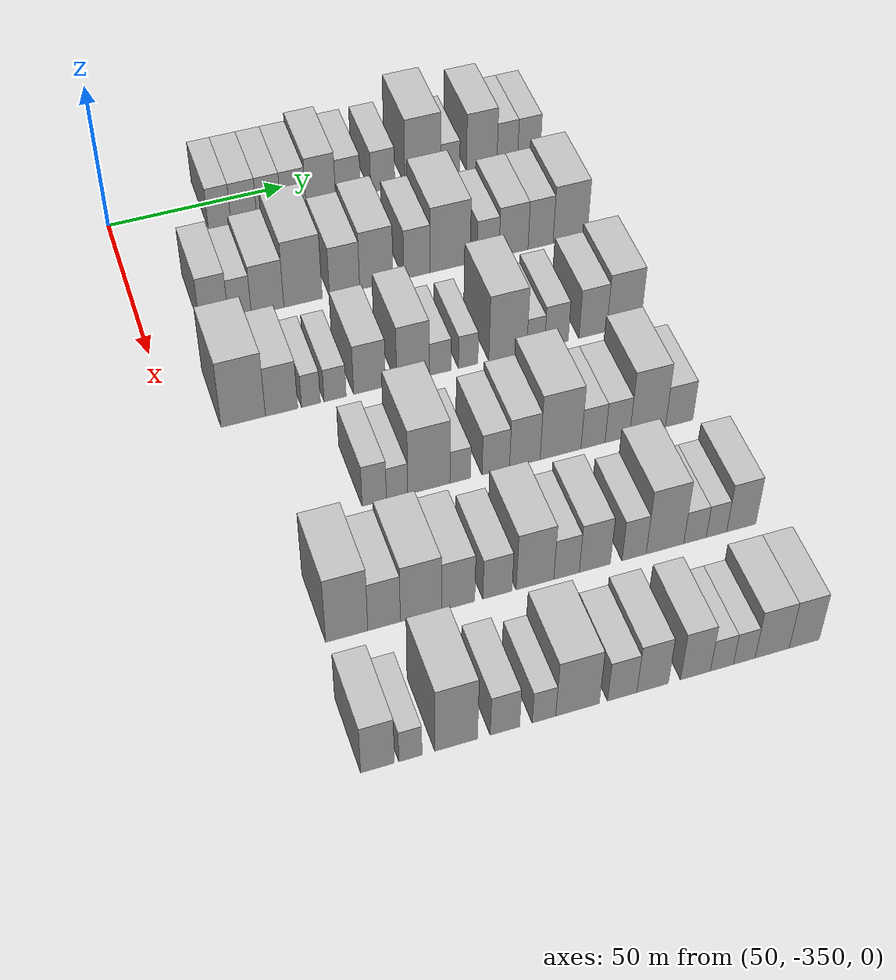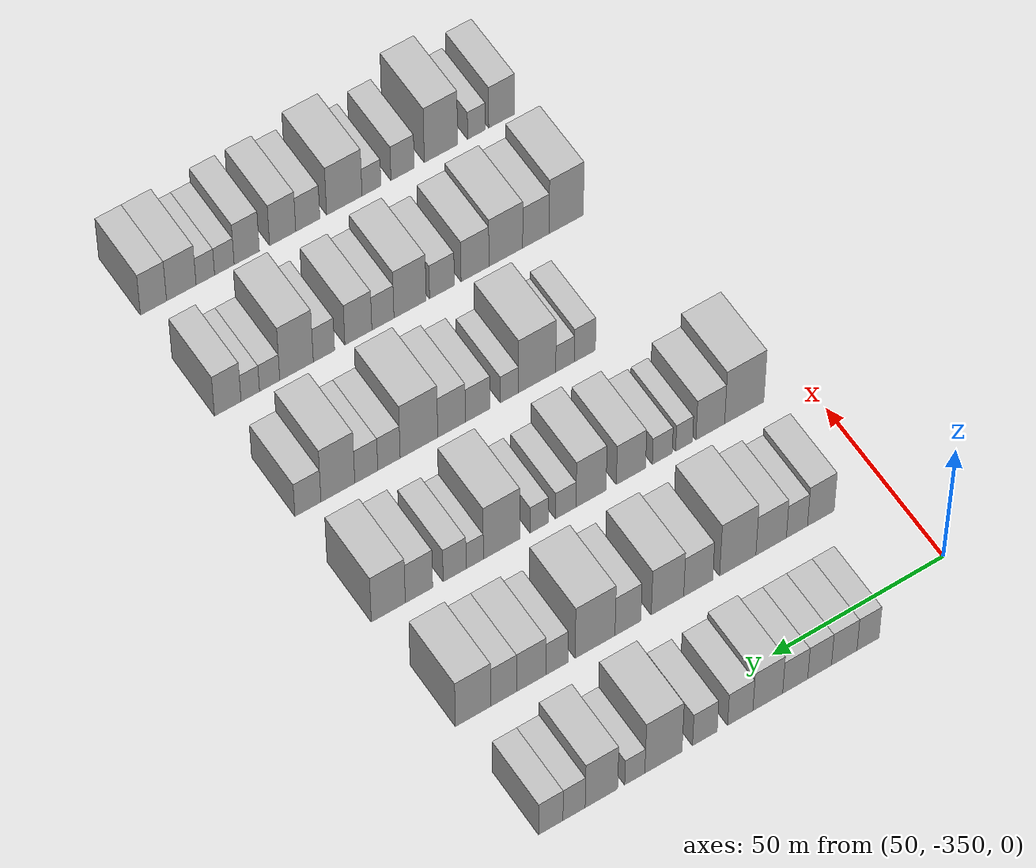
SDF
<sdf version="1.6">
 <world name="default">
  <model name="building_25">
   <static>1</static>
   <pose>50.0000 -320.8477 0 0.000000 0.000000 0.000000</pose>
   <link name="link">
    <pose>0 0 7.50 0 0 0</pose>
    <collision name="collision"><geometry><box><size>20.0000 6.4245 15.0000</size></box></geometry></collision>
    <visual name="visual">
     <cast_shadows>0</cast_shadows>
     <geometry><box><size>20.0000 6.4245 15.0000</size></box></geometry>
     <material>
      <script>
       <uri>model://HANNAS_wall/materials/scripts</uri>
       <uri>model://HANNAS_wall/materials/textures</uri>
       <name>vrc/HANNAS_wall</name>
      </script>
     </material>
    </visual>
   </link>
  </model>
  <model name="building_26">
   <static>1</static>
   <pose>50.0000 -313.9366 0 0.000000 0.000000 0.000000</pose>
   <link name="link">
    <pose>0 0 7.50 0 0 0</pose>
    <collision name="collision"><geometry><box><size>20.0000 7.3976 15.0000</size></box></geometry></collision>
    <visual name="visual">
     <cast_shadows>0</cast_shadows>
     <geometry><box><size>20.0000 7.3976 15.0000</size></box></geometry>
     <material>
      <script>
       <uri>model://HANNAS_wall/materials/scripts</uri>
       <uri>model://HANNAS_wall/materials/textures</uri>
       <name>vrc/HANNAS_wall</name>
      </script>
     </material>
    </visual>
   </link>
  </model>
  <model name="building_27">
   <static>1</static>
   <pose>50.0000 -306.7910 0 0.000000 0.000000 0.000000</pose>
   <link name="link">
    <pose>0 0 7.50 0 0 0</pose>
    <collision name="collision"><geometry><box><size>20.0000 6.8936 15.0000</size></box></geometry></collision>
    <visual name="visual">
     <cast_shadows>0</cast_shadows>
     <geometry><box><size>20.0000 6.8936 15.0000</size></box></geometry>
     <material>
      <script>
       <uri>model://HANNAS_wall/materials/scripts</uri>
       <uri>model://HANNAS_wall/materials/textures</uri>
       <name>vrc/HANNAS_wall</name>
      </script>
     </material>
    </visual>
   </link>
  </model>
  <model name="building_28">
   <static>1</static>
   <pose>50.0000 -299.7176 0 0.000000 0.000000 0.000000</pose>
   <link name="link">
    <pose>0 0 7.50 0 0 0</pose>
    <collision name="collision"><geometry><box><size>20.0000 7.2533 15.0000</size></box></geometry></collision>
    <visual name="visual">
     <cast_shadows>0</cast_shadows>
     <geometry><box><size>20.0000 7.2533 15.0000</size></box></geometry>
     <material>
      <script>
       <uri>model://HANNAS_wall/materials/scripts</uri>
       <uri>model://HANNAS_wall/materials/textures</uri>
       <name>vrc/HANNAS_wall</name>
      </script>
     </material>
    </visual>
   </link>
  </model>
  <model name="building_29">
   <static>1</static>
   <pose>50.0000 -291.8006 0 0.000000 0.000000 0.000000</pose>
   <link name="link">
    <pose>0 0 9.00 0 0 0</pose>
    <collision name="collision"><geometry><box><size>20.0000 8.5807 18.0000</size></box></geometry></collision>
    <visual name="visual">
     <cast_shadows>0</cast_shadows>
     <geometry><box><size>20.0000 8.5807 18.0000</size></box></geometry>
     <material>
      <script>
       <uri>model://HANNAS_wall/materials/scripts</uri>
       <uri>model://HANNAS_wall/materials/textures</uri>
       <name>vrc/HANNAS_wall</name>
      </script>
     </material>
    </visual>
   </link>
  </model>
  <model name="building_30">
   <static>1</static>
   <pose>50.0000 -283.8767 0 0.000000 0.000000 0.000000</pose>
   <link name="link">
    <pose>0 0 7.50 0 0 0</pose>
    <collision name="collision"><geometry><box><size>20.0000 7.2670 15.0000</size></box></geometry></collision>
    <visual name="visual">
     <cast_shadows>0</cast_shadows>
     <geometry><box><size>20.0000 7.2670 15.0000</size></box></geometry>
     <material>
      <script>
       <uri>model://HANNAS_wall/materials/scripts</uri>
       <uri>model://HANNAS_wall/materials/textures</uri>
       <name>vrc/HANNAS_wall</name>
      </script>
     </material>
    </visual>
   </link>
  </model>
  <model name="building_31">
   <static>1</static>
   <pose>50.0000 -273.7150 0 0.000000 0.000000 0.000000</pose>
   <link name="link">
    <pose>0 0 7.50 0 0 0</pose>
    <collision name="collision"><geometry><box><size>20.0000 7.0563 15.0000</size></box></geometry></collision>
    <visual name="visual">
     <cast_shadows>0</cast_shadows>
     <geometry><box><size>20.0000 7.0563 15.0000</size></box></geometry>
     <material>
      <script>
       <uri>model://HANNAS_wall/materials/scripts</uri>
       <uri>model://HANNAS_wall/materials/textures</uri>
       <name>vrc/HANNAS_wall</name>
      </script>
     </material>
    </visual>
   </link>
  </model>
  <model name="building_32">
   <static>1</static>
   <pose>50.0000 -261.8928 0 0.000000 0.000000 0.000000</pose>
   <link name="link">
    <pose>0 0 12.00 0 0 0</pose>
    <collision name="collision"><geometry><box><size>20.0000 10.5881 24.0000</size></box></geometry></collision>
    <visual name="visual">
     <cast_shadows>0</cast_shadows>
     <geometry><box><size>20.0000 10.5881 24.0000</size></box></geometry>
     <material>
      <script>
       <uri>model://HANNAS_wall/materials/scripts</uri>
       <uri>model://HANNAS_wall/materials/textures</uri>
       <name>vrc/HANNAS_wall</name>
      </script>
     </material>
    </visual>
   </link>
  </model>
  <model name="building_33">
   <static>1</static>
   <pose>50.0000 -253.7408 0 0.000000 0.000000 0.000000</pose>
   <link name="link">
    <pose>0 0 6.00 0 0 0</pose>
    <collision name="collision"><geometry><box><size>20.0000 5.7161 12.0000</size></box></geometry></collision>
    <visual name="visual">
     <cast_shadows>0</cast_shadows>
     <geometry><box><size>20.0000 5.7161 12.0000</size></box></geometry>
     <material>
      <script>
       <uri>model://HANNAS_wall/materials/scripts</uri>
       <uri>model://HANNAS_wall/materials/textures</uri>
       <name>vrc/HANNAS_wall</name>
      </script>
     </material>
    </visual>
   </link>
  </model>
  <model name="building_34">
   <static>1</static>
   <pose>50.0000 -244.2932 0 0.000000 0.000000 0.000000</pose>
   <link name="link">
    <pose>0 0 10.50 0 0 0</pose>
    <collision name="collision"><geometry><box><size>20.0000 9.1791 21.0000</size></box></geometry></collision>
    <visual name="visual">
     <cast_shadows>0</cast_shadows>
     <geometry><box><size>20.0000 9.1791 21.0000</size></box></geometry>
     <material>
      <script>
       <uri>model://HANNAS_wall/materials/scripts</uri>
       <uri>model://HANNAS_wall/materials/textures</uri>
       <name>vrc/HANNAS_wall</name>
      </script>
     </material>
    </visual>
   </link>
  </model>
  <model name="building_35">
   <static>1</static>
   <pose>50.0000 -236.5688 0 0.000000 0.000000 0.000000</pose>
   <link name="link">
    <pose>0 0 7.50 0 0 0</pose>
    <collision name="collision"><geometry><box><size>20.0000 6.2698 15.0000</size></box></geometry></collision>
    <visual name="visual">
     <cast_shadows>0</cast_shadows>
     <geometry><box><size>20.0000 6.2698 15.0000</size></box></geometry>
     <material>
      <script>
       <uri>model://HANNAS_wall/materials/scripts</uri>
       <uri>model://HANNAS_wall/materials/textures</uri>
       <name>vrc/HANNAS_wall</name>
      </script>
     </material>
    </visual>
   </link>
  </model>
  <model name="building_36">
   <static>1</static>
   <pose>50.0000 -230.0047 0 0.000000 0.000000 0.000000</pose>
   <link name="link">
    <pose>0 0 7.50 0 0 0</pose>
    <collision name="collision"><geometry><box><size>20.0000 6.8583 15.0000</size></box></geometry></collision>
    <visual name="visual">
     <cast_shadows>0</cast_shadows>
     <geometry><box><size>20.0000 6.8583 15.0000</size></box></geometry>
     <material>
      <script>
       <uri>model://HANNAS_wall/materials/scripts</uri>
       <uri>model://HANNAS_wall/materials/textures</uri>
       <name>vrc/HANNAS_wall</name>
      </script>
     </material>
    </visual>
   </link>
  </model>
  <model name="building_149">
   <static>1</static>
   <pose>85.0000 -331.2037 0 0.000000 0.000000 0.000000</pose>
   <link name="link">
    <pose>0 0 9.00 0 0 0</pose>
    <collision name="collision"><geometry><box><size>20.0000 7.8263 18.0000</size></box></geometry></collision>
    <visual name="visual">
     <cast_shadows>0</cast_shadows>
     <geometry><box><size>20.0000 7.8263 18.0000</size></box></geometry>
     <material>
      <script>
       <uri>model://HANNAS_wall/materials/scripts</uri>
       <uri>model://HANNAS_wall/materials/textures</uri>
       <name>vrc/HANNAS_wall</name>
      </script>
     </material>
    </visual>
   </link>
  </model>
  <model name="building_150">
   <static>1</static>
   <pose>85.0000 -324.1836 0 0.000000 0.000000 0.000000</pose>
   <link name="link">
    <pose>0 0 7.50 0 0 0</pose>
    <collision name="collision"><geometry><box><size>20.0000 6.2140 15.0000</size></box></geometry></collision>
    <visual name="visual">
     <cast_shadows>0</cast_shadows>
     <geometry><box><size>20.0000 6.2140 15.0000</size></box></geometry>
     <material>
      <script>
       <uri>model://HANNAS_wall/materials/scripts</uri>
       <uri>model://HANNAS_wall/materials/textures</uri>
       <name>vrc/HANNAS_wall</name>
      </script>
     </material>
    </visual>
   </link>
  </model>
  <model name="building_151">
   <static>1</static>
   <pose>85.0000 -316.6134 0 0.000000 0.000000 0.000000</pose>
   <link name="link">
    <pose>0 0 9.00 0 0 0</pose>
    <collision name="collision"><geometry><box><size>20.0000 8.9263 18.0000</size></box></geometry></collision>
    <visual name="visual">
     <cast_shadows>0</cast_shadows>
     <geometry><box><size>20.0000 8.9263 18.0000</size></box></geometry>
     <material>
      <script>
       <uri>model://HANNAS_wall/materials/scripts</uri>
       <uri>model://HANNAS_wall/materials/textures</uri>
       <name>vrc/HANNAS_wall</name>
      </script>
     </material>
    </visual>
   </link>
  </model>
  <model name="building_152">
   <static>1</static>
   <pose>85.0000 -306.8565 0 0.000000 0.000000 0.000000</pose>
   <link name="link">
    <pose>0 0 12.00 0 0 0</pose>
    <collision name="collision"><geometry><box><size>20.0000 10.5875 24.0000</size></box></geometry></collision>
    <visual name="visual">
     <cast_shadows>0</cast_shadows>
     <geometry><box><size>20.0000 10.5875 24.0000</size></box></geometry>
     <material>
      <script>
       <uri>model://HANNAS_wall/materials/scripts</uri>
       <uri>model://HANNAS_wall/materials/textures</uri>
       <name>vrc/HANNAS_wall</name>
      </script>
     </material>
    </visual>
   </link>
  </model>
  <model name="building_153">
   <static>1</static>
   <pose>85.0000 -295.3487 0 0.000000 0.000000 0.000000</pose>
   <link name="link">
    <pose>0 0 9.00 0 0 0</pose>
    <collision name="collision"><geometry><box><size>20.0000 8.4281 18.0000</size></box></geometry></collision>
    <visual name="visual">
     <cast_shadows>0</cast_shadows>
     <geometry><box><size>20.0000 8.4281 18.0000</size></box></geometry>
     <material>
      <script>
       <uri>model://HANNAS_wall/materials/scripts</uri>
       <uri>model://HANNAS_wall/materials/textures</uri>
       <name>vrc/HANNAS_wall</name>
      </script>
     </material>
    </visual>
   </link>
  </model>
  <model name="building_154">
   <static>1</static>
   <pose>85.0000 -286.4419 0 0.000000 0.000000 0.000000</pose>
   <link name="link">
    <pose>0 0 10.50 0 0 0</pose>
    <collision name="collision"><geometry><box><size>20.0000 9.3855 21.0000</size></box></geometry></collision>
    <visual name="visual">
     <cast_shadows>0</cast_shadows>
     <geometry><box><size>20.0000 9.3855 21.0000</size></box></geometry>
     <material>
      <script>
       <uri>model://HANNAS_wall/materials/scripts</uri>
       <uri>model://HANNAS_wall/materials/textures</uri>
       <name>vrc/HANNAS_wall</name>
      </script>
     </material>
    </visual>
   </link>
  </model>
  <model name="building_155">
   <static>1</static>
   <pose>85.0000 -275.0157 0 0.000000 0.000000 0.000000</pose>
   <link name="link">
    <pose>0 0 9.00 0 0 0</pose>
    <collision name="collision"><geometry><box><size>20.0000 7.4668 18.0000</size></box></geometry></collision>
    <visual name="visual">
     <cast_shadows>0</cast_shadows>
     <geometry><box><size>20.0000 7.4668 18.0000</size></box></geometry>
     <material>
      <script>
       <uri>model://HANNAS_wall/materials/scripts</uri>
       <uri>model://HANNAS_wall/materials/textures</uri>
       <name>vrc/HANNAS_wall</name>
      </script>
     </material>
    </visual>
   </link>
  </model>
  <model name="building_156">
   <static>1</static>
   <pose>85.0000 -265.5627 0 0.000000 0.000000 0.000000</pose>
   <link name="link">
    <pose>0 0 12.00 0 0 0</pose>
    <collision name="collision"><geometry><box><size>20.0000 11.4392 24.0000</size></box></geometry></collision>
    <visual name="visual">
     <cast_shadows>0</cast_shadows>
     <geometry><box><size>20.0000 11.4392 24.0000</size></box></geometry>
     <material>
      <script>
       <uri>model://HANNAS_wall/materials/scripts</uri>
       <uri>model://HANNAS_wall/materials/textures</uri>
       <name>vrc/HANNAS_wall</name>
      </script>
     </material>
    </visual>
   </link>
  </model>
  <model name="building_157">
   <static>1</static>
   <pose>85.0000 -254.7006 0 0.000000 0.000000 0.000000</pose>
   <link name="link">
    <pose>0 0 7.50 0 0 0</pose>
    <collision name="collision"><geometry><box><size>20.0000 6.2848 15.0000</size></box></geometry></collision>
    <visual name="visual">
     <cast_shadows>0</cast_shadows>
     <geometry><box><size>20.0000 6.2848 15.0000</size></box></geometry>
     <material>
      <script>
       <uri>model://HANNAS_wall/materials/scripts</uri>
       <uri>model://HANNAS_wall/materials/textures</uri>
       <name>vrc/HANNAS_wall</name>
      </script>
     </material>
    </visual>
   </link>
  </model>
  <model name="building_158">
   <static>1</static>
   <pose>85.0000 -247.3422 0 0.000000 0.000000 0.000000</pose>
   <link name="link">
    <pose>0 0 9.00 0 0 0</pose>
    <collision name="collision"><geometry><box><size>20.0000 8.4321 18.0000</size></box></geometry></collision>
    <visual name="visual">
     <cast_shadows>0</cast_shadows>
     <geometry><box><size>20.0000 8.4321 18.0000</size></box></geometry>
     <material>
      <script>
       <uri>model://HANNAS_wall/materials/scripts</uri>
       <uri>model://HANNAS_wall/materials/textures</uri>
       <name>vrc/HANNAS_wall</name>
      </script>
     </material>
    </visual>
   </link>
  </model>
  <model name="building_159">
   <static>1</static>
   <pose>85.0000 -239.4727 0 0.000000 0.000000 0.000000</pose>
   <link name="link">
    <pose>0 0 9.00 0 0 0</pose>
    <collision name="collision"><geometry><box><size>20.0000 7.3069 18.0000</size></box></geometry></collision>
    <visual name="visual">
     <cast_shadows>0</cast_shadows>
     <geometry><box><size>20.0000 7.3069 18.0000</size></box></geometry>
     <material>
      <script>
       <uri>model://HANNAS_wall/materials/scripts</uri>
       <uri>model://HANNAS_wall/materials/textures</uri>
       <name>vrc/HANNAS_wall</name>
      </script>
     </material>
    </visual>
   </link>
  </model>
  <model name="building_160">
   <static>1</static>
   <pose>85.0000 -230.8018 0 0.000000 0.000000 0.000000</pose>
   <link name="link">
    <pose>0 0 10.50 0 0 0</pose>
    <collision name="collision"><geometry><box><size>20.0000 10.0349 21.0000</size></box></geometry></collision>
    <visual name="visual">
     <cast_shadows>0</cast_shadows>
     <geometry><box><size>20.0000 10.0349 21.0000</size></box></geometry>
     <material>
      <script>
       <uri>model://HANNAS_wall/materials/scripts</uri>
       <uri>model://HANNAS_wall/materials/textures</uri>
       <name>vrc/HANNAS_wall</name>
      </script>
     </material>
    </visual>
   </link>
  </model>
  <model name="building_269">
   <static>1</static>
   <pose>120.0000 -332.4717 0 0.000000 0.000000 0.000000</pose>
   <link name="link">
    <pose>0 0 12.00 0 0 0</pose>
    <collision name="collision"><geometry><box><size>20.0000 11.5956 24.0000</size></box></geometry></collision>
    <visual name="visual">
     <cast_shadows>0</cast_shadows>
     <geometry><box><size>20.0000 11.5956 24.0000</size></box></geometry>
     <material>
      <script>
       <uri>model://HANNAS_wall/materials/scripts</uri>
       <uri>model://HANNAS_wall/materials/textures</uri>
       <name>vrc/HANNAS_wall</name>
      </script>
     </material>
    </visual>
   </link>
  </model>
  <model name="building_270">
   <static>1</static>
   <pose>120.0000 -322.4384 0 0.000000 0.000000 0.000000</pose>
   <link name="link">
    <pose>0 0 9.00 0 0 0</pose>
    <collision name="collision"><geometry><box><size>20.0000 8.4710 18.0000</size></box></geometry></collision>
    <visual name="visual">
     <cast_shadows>0</cast_shadows>
     <geometry><box><size>20.0000 8.4710 18.0000</size></box></geometry>
     <material>
      <script>
       <uri>model://HANNAS_wall/materials/scripts</uri>
       <uri>model://HANNAS_wall/materials/textures</uri>
       <name>vrc/HANNAS_wall</name>
      </script>
     </material>
    </visual>
   </link>
  </model>
  <model name="building_271">
   <static>1</static>
   <pose>120.0000 -314.7164 0 0.000000 0.000000 0.000000</pose>
   <link name="link">
    <pose>0 0 6.00 0 0 0</pose>
    <collision name="collision"><geometry><box><size>20.0000 4.9730 12.0000</size></box></geometry></collision>
    <visual name="visual">
     <cast_shadows>0</cast_shadows>
     <geometry><box><size>20.0000 4.9730 12.0000</size></box></geometry>
     <material>
      <script>
       <uri>model://HANNAS_wall/materials/scripts</uri>
       <uri>model://HANNAS_wall/materials/textures</uri>
       <name>vrc/HANNAS_wall</name>
      </script>
     </material>
    </visual>
   </link>
  </model>
  <model name="building_272">
   <static>1</static>
   <pose>120.0000 -308.3107 0 0.000000 0.000000 0.000000</pose>
   <link name="link">
    <pose>0 0 6.00 0 0 0</pose>
    <collision name="collision"><geometry><box><size>20.0000 5.8384 12.0000</size></box></geometry></collision>
    <visual name="visual">
     <cast_shadows>0</cast_shadows>
     <geometry><box><size>20.0000 5.8384 12.0000</size></box></geometry>
     <material>
      <script>
       <uri>model://HANNAS_wall/materials/scripts</uri>
       <uri>model://HANNAS_wall/materials/textures</uri>
       <name>vrc/HANNAS_wall</name>
      </script>
     </material>
    </visual>
   </link>
  </model>
  <model name="building_273">
   <static>1</static>
   <pose>120.0000 -299.1204 0 0.000000 0.000000 0.000000</pose>
   <link name="link">
    <pose>0 0 9.00 0 0 0</pose>
    <collision name="collision"><geometry><box><size>20.0000 8.5421 18.0000</size></box></geometry></collision>
    <visual name="visual">
     <cast_shadows>0</cast_shadows>
     <geometry><box><size>20.0000 8.5421 18.0000</size></box></geometry>
     <material>
      <script>
       <uri>model://HANNAS_wall/materials/scripts</uri>
       <uri>model://HANNAS_wall/materials/textures</uri>
       <name>vrc/HANNAS_wall</name>
      </script>
     </material>
    </visual>
   </link>
  </model>
  <model name="building_274">
   <static>1</static>
   <pose>120.0000 -287.4731 0 0.000000 0.000000 0.000000</pose>
   <link name="link">
    <pose>0 0 10.50 0 0 0</pose>
    <collision name="collision"><geometry><box><size>20.0000 8.7524 21.0000</size></box></geometry></collision>
    <visual name="visual">
     <cast_shadows>0</cast_shadows>
     <geometry><box><size>20.0000 8.7524 21.0000</size></box></geometry>
     <material>
      <script>
       <uri>model://HANNAS_wall/materials/scripts</uri>
       <uri>model://HANNAS_wall/materials/textures</uri>
       <name>vrc/HANNAS_wall</name>
      </script>
     </material>
    </visual>
   </link>
  </model>
  <model name="building_275">
   <static>1</static>
   <pose>120.0000 -280.1041 0 0.000000 0.000000 0.000000</pose>
   <link name="link">
    <pose>0 0 6.00 0 0 0</pose>
    <collision name="collision"><geometry><box><size>20.0000 5.9857 12.0000</size></box></geometry></collision>
    <visual name="visual">
     <cast_shadows>0</cast_shadows>
     <geometry><box><size>20.0000 5.9857 12.0000</size></box></geometry>
     <material>
      <script>
       <uri>model://HANNAS_wall/materials/scripts</uri>
       <uri>model://HANNAS_wall/materials/textures</uri>
       <name>vrc/HANNAS_wall</name>
      </script>
     </material>
    </visual>
   </link>
  </model>
  <model name="building_276">
   <static>1</static>
   <pose>120.0000 -272.4570 0 0.000000 0.000000 0.000000</pose>
   <link name="link">
    <pose>0 0 6.00 0 0 0</pose>
    <collision name="collision"><geometry><box><size>20.0000 5.3084 12.0000</size></box></geometry></collision>
    <visual name="visual">
     <cast_shadows>0</cast_shadows>
     <geometry><box><size>20.0000 5.3084 12.0000</size></box></geometry>
     <material>
      <script>
       <uri>model://HANNAS_wall/materials/scripts</uri>
       <uri>model://HANNAS_wall/materials/textures</uri>
       <name>vrc/HANNAS_wall</name>
      </script>
     </material>
    </visual>
   </link>
  </model>
  <model name="building_277">
   <static>1</static>
   <pose>120.0000 -261.5640 0 0.000000 0.000000 0.000000</pose>
   <link name="link">
    <pose>0 0 12.00 0 0 0</pose>
    <collision name="collision"><geometry><box><size>20.0000 10.4777 24.0000</size></box></geometry></collision>
    <visual name="visual">
     <cast_shadows>0</cast_shadows>
     <geometry><box><size>20.0000 10.4777 24.0000</size></box></geometry>
     <material>
      <script>
       <uri>model://HANNAS_wall/materials/scripts</uri>
       <uri>model://HANNAS_wall/materials/textures</uri>
       <name>vrc/HANNAS_wall</name>
      </script>
     </material>
    </visual>
   </link>
  </model>
  <model name="building_278">
   <static>1</static>
   <pose>120.0000 -253.8477 0 0.000000 0.000000 0.000000</pose>
   <link name="link">
    <pose>0 0 6.00 0 0 0</pose>
    <collision name="collision"><geometry><box><size>20.0000 4.9549 12.0000</size></box></geometry></collision>
    <visual name="visual">
     <cast_shadows>0</cast_shadows>
     <geometry><box><size>20.0000 4.9549 12.0000</size></box></geometry>
     <material>
      <script>
       <uri>model://HANNAS_wall/materials/scripts</uri>
       <uri>model://HANNAS_wall/materials/textures</uri>
       <name>vrc/HANNAS_wall</name>
      </script>
     </material>
    </visual>
   </link>
  </model>
  <model name="building_279">
   <static>1</static>
   <pose>120.0000 -248.0724 0 0.000000 0.000000 0.000000</pose>
   <link name="link">
    <pose>0 0 7.50 0 0 0</pose>
    <collision name="collision"><geometry><box><size>20.0000 6.5958 15.0000</size></box></geometry></collision>
    <visual name="visual">
     <cast_shadows>0</cast_shadows>
     <geometry><box><size>20.0000 6.5958 15.0000</size></box></geometry>
     <material>
      <script>
       <uri>model://HANNAS_wall/materials/scripts</uri>
       <uri>model://HANNAS_wall/materials/textures</uri>
       <name>vrc/HANNAS_wall</name>
      </script>
     </material>
    </visual>
   </link>
  </model>
  <model name="building_280">
   <static>1</static>
   <pose>120.0000 -237.8696 0 0.000000 0.000000 0.000000</pose>
   <link name="link">
    <pose>0 0 9.00 0 0 0</pose>
    <collision name="collision"><geometry><box><size>20.0000 7.8098 18.0000</size></box></geometry></collision>
    <visual name="visual">
     <cast_shadows>0</cast_shadows>
     <geometry><box><size>20.0000 7.8098 18.0000</size></box></geometry>
     <material>
      <script>
       <uri>model://HANNAS_wall/materials/scripts</uri>
       <uri>model://HANNAS_wall/materials/textures</uri>
       <name>vrc/HANNAS_wall</name>
      </script>
     </material>
    </visual>
   </link>
  </model>
  <model name="building_281">
   <static>1</static>
   <pose>120.0000 -229.1177 0 0.000000 0.000000 0.000000</pose>
   <link name="link">
    <pose>0 0 10.50 0 0 0</pose>
    <collision name="collision"><geometry><box><size>20.0000 9.6940 21.0000</size></box></geometry></collision>
    <visual name="visual">
     <cast_shadows>0</cast_shadows>
     <geometry><box><size>20.0000 9.6940 21.0000</size></box></geometry>
     <material>
      <script>
       <uri>model://HANNAS_wall/materials/scripts</uri>
       <uri>model://HANNAS_wall/materials/textures</uri>
       <name>vrc/HANNAS_wall</name>
      </script>
     </material>
    </visual>
   </link>
  </model>
  <model name="building_399">
   <static>1</static>
   <pose>155.0000 -308.7125 0 0.000000 0.000000 0.000000</pose>
   <link name="link">
    <pose>0 0 7.50 0 0 0</pose>
    <collision name="collision"><geometry><box><size>20.0000 6.1995 15.0000</size></box></geometry></collision>
    <visual name="visual">
     <cast_shadows>0</cast_shadows>
     <geometry><box><size>20.0000 6.1995 15.0000</size></box></geometry>
     <material>
      <script>
       <uri>model://HANNAS_wall/materials/scripts</uri>
       <uri>model://HANNAS_wall/materials/textures</uri>
       <name>vrc/HANNAS_wall</name>
      </script>
     </material>
    </visual>
   </link>
  </model>
  <model name="building_400">
   <static>1</static>
   <pose>155.0000 -302.8727 0 0.000000 0.000000 0.000000</pose>
   <link name="link">
    <pose>0 0 6.00 0 0 0</pose>
    <collision name="collision"><geometry><box><size>20.0000 5.4802 12.0000</size></box></geometry></collision>
    <visual name="visual">
     <cast_shadows>0</cast_shadows>
     <geometry><box><size>20.0000 5.4802 12.0000</size></box></geometry>
     <material>
      <script>
       <uri>model://HANNAS_wall/materials/scripts</uri>
       <uri>model://HANNAS_wall/materials/textures</uri>
       <name>vrc/HANNAS_wall</name>
      </script>
     </material>
    </visual>
   </link>
  </model>
  <model name="building_401">
   <static>1</static>
   <pose>155.0000 -294.6888 0 0.000000 0.000000 0.000000</pose>
   <link name="link">
    <pose>0 0 12.00 0 0 0</pose>
    <collision name="collision"><geometry><box><size>20.0000 10.8877 24.0000</size></box></geometry></collision>
    <visual name="visual">
     <cast_shadows>0</cast_shadows>
     <geometry><box><size>20.0000 10.8877 24.0000</size></box></geometry>
     <material>
      <script>
       <uri>model://HANNAS_wall/materials/scripts</uri>
       <uri>model://HANNAS_wall/materials/textures</uri>
       <name>vrc/HANNAS_wall</name>
      </script>
     </material>
    </visual>
   </link>
  </model>
  <model name="building_402">
   <static>1</static>
   <pose>155.0000 -286.5653 0 0.000000 0.000000 0.000000</pose>
   <link name="link">
    <pose>0 0 6.00 0 0 0</pose>
    <collision name="collision"><geometry><box><size>20.0000 5.3592 12.0000</size></box></geometry></collision>
    <visual name="visual">
     <cast_shadows>0</cast_shadows>
     <geometry><box><size>20.0000 5.3592 12.0000</size></box></geometry>
     <material>
      <script>
       <uri>model://HANNAS_wall/materials/scripts</uri>
       <uri>model://HANNAS_wall/materials/textures</uri>
       <name>vrc/HANNAS_wall</name>
      </script>
     </material>
    </visual>
   </link>
  </model>
  <model name="building_403">
   <static>1</static>
   <pose>155.0000 -277.2826 0 0.000000 0.000000 0.000000</pose>
   <link name="link">
    <pose>0 0 7.50 0 0 0</pose>
    <collision name="collision"><geometry><box><size>20.0000 7.2064 15.0000</size></box></geometry></collision>
    <visual name="visual">
     <cast_shadows>0</cast_shadows>
     <geometry><box><size>20.0000 7.2064 15.0000</size></box></geometry>
     <material>
      <script>
       <uri>model://HANNAS_wall/materials/scripts</uri>
       <uri>model://HANNAS_wall/materials/textures</uri>
       <name>vrc/HANNAS_wall</name>
      </script>
     </material>
    </visual>
   </link>
  </model>
  <model name="building_404">
   <static>1</static>
   <pose>155.0000 -269.6593 0 0.000000 0.000000 0.000000</pose>
   <link name="link">
    <pose>0 0 9.00 0 0 0</pose>
    <collision name="collision"><geometry><box><size>20.0000 8.0402 18.0000</size></box></geometry></collision>
    <visual name="visual">
     <cast_shadows>0</cast_shadows>
     <geometry><box><size>20.0000 8.0402 18.0000</size></box></geometry>
     <material>
      <script>
       <uri>model://HANNAS_wall/materials/scripts</uri>
       <uri>model://HANNAS_wall/materials/textures</uri>
       <name>vrc/HANNAS_wall</name>
      </script>
     </material>
    </visual>
   </link>
  </model>
  <model name="building_405">
   <static>1</static>
   <pose>155.0000 -260.1906 0 0.000000 0.000000 0.000000</pose>
   <link name="link">
    <pose>0 0 12.00 0 0 0</pose>
    <collision name="collision"><geometry><box><size>20.0000 10.8971 24.0000</size></box></geometry></collision>
    <visual name="visual">
     <cast_shadows>0</cast_shadows>
     <geometry><box><size>20.0000 10.8971 24.0000</size></box></geometry>
     <material>
      <script>
       <uri>model://HANNAS_wall/materials/scripts</uri>
       <uri>model://HANNAS_wall/materials/textures</uri>
       <name>vrc/HANNAS_wall</name>
      </script>
     </material>
    </visual>
   </link>
  </model>
  <model name="building_406">
   <static>1</static>
   <pose>155.0000 -251.5066 0 0.000000 0.000000 0.000000</pose>
   <link name="link">
    <pose>0 0 7.50 0 0 0</pose>
    <collision name="collision"><geometry><box><size>20.0000 6.4710 15.0000</size></box></geometry></collision>
    <visual name="visual">
     <cast_shadows>0</cast_shadows>
     <geometry><box><size>20.0000 6.4710 15.0000</size></box></geometry>
     <material>
      <script>
       <uri>model://HANNAS_wall/materials/scripts</uri>
       <uri>model://HANNAS_wall/materials/textures</uri>
       <name>vrc/HANNAS_wall</name>
      </script>
     </material>
    </visual>
   </link>
  </model>
  <model name="building_407">
   <static>1</static>
   <pose>155.0000 -244.9653 0 0.000000 0.000000 0.000000</pose>
   <link name="link">
    <pose>0 0 7.50 0 0 0</pose>
    <collision name="collision"><geometry><box><size>20.0000 6.6116 15.0000</size></box></geometry></collision>
    <visual name="visual">
     <cast_shadows>0</cast_shadows>
     <geometry><box><size>20.0000 6.6116 15.0000</size></box></geometry>
     <material>
      <script>
       <uri>model://HANNAS_wall/materials/scripts</uri>
       <uri>model://HANNAS_wall/materials/textures</uri>
       <name>vrc/HANNAS_wall</name>
      </script>
     </material>
    </visual>
   </link>
  </model>
  <model name="building_408">
   <static>1</static>
   <pose>155.0000 -236.8015 0 0.000000 0.000000 0.000000</pose>
   <link name="link">
    <pose>0 0 12.00 0 0 0</pose>
    <collision name="collision"><geometry><box><size>20.0000 9.7159 24.0000</size></box></geometry></collision>
    <visual name="visual">
     <cast_shadows>0</cast_shadows>
     <geometry><box><size>20.0000 9.7159 24.0000</size></box></geometry>
     <material>
      <script>
       <uri>model://HANNAS_wall/materials/scripts</uri>
       <uri>model://HANNAS_wall/materials/textures</uri>
       <name>vrc/HANNAS_wall</name>
      </script>
     </material>
    </visual>
   </link>
  </model>
  <model name="building_409">
   <static>1</static>
   <pose>155.0000 -228.2066 0 0.000000 0.000000 0.000000</pose>
   <link name="link">
    <pose>0 0 7.50 0 0 0</pose>
    <collision name="collision"><geometry><box><size>20.0000 7.4738 15.0000</size></box></geometry></collision>
    <visual name="visual">
     <cast_shadows>0</cast_shadows>
     <geometry><box><size>20.0000 7.4738 15.0000</size></box></geometry>
     <material>
      <script>
       <uri>model://HANNAS_wall/materials/scripts</uri>
       <uri>model://HANNAS_wall/materials/textures</uri>
       <name>vrc/HANNAS_wall</name>
      </script>
     </material>
    </visual>
   </link>
  </model>
  <model name="building_525">
   <static>1</static>
   <pose>190.0000 -326.1754 0 0.000000 0.000000 0.000000</pose>
   <link name="link">
    <pose>0 0 12.00 0 0 0</pose>
    <collision name="collision"><geometry><box><size>20.0000 10.1729 24.0000</size></box></geometry></collision>
    <visual name="visual">
     <cast_shadows>0</cast_shadows>
     <geometry><box><size>20.0000 10.1729 24.0000</size></box></geometry>
     <material>
      <script>
       <uri>model://HANNAS_wall/materials/scripts</uri>
       <uri>model://HANNAS_wall/materials/textures</uri>
       <name>vrc/HANNAS_wall</name>
      </script>
     </material>
    </visual>
   </link>
  </model>
  <model name="building_526">
   <static>1</static>
   <pose>190.0000 -317.1412 0 0.000000 0.000000 0.000000</pose>
   <link name="link">
    <pose>0 0 9.00 0 0 0</pose>
    <collision name="collision"><geometry><box><size>20.0000 7.8956 18.0000</size></box></geometry></collision>
    <visual name="visual">
     <cast_shadows>0</cast_shadows>
     <geometry><box><size>20.0000 7.8956 18.0000</size></box></geometry>
     <material>
      <script>
       <uri>model://HANNAS_wall/materials/scripts</uri>
       <uri>model://HANNAS_wall/materials/textures</uri>
       <name>vrc/HANNAS_wall</name>
      </script>
     </material>
    </visual>
   </link>
  </model>
  <model name="building_527">
   <static>1</static>
   <pose>190.0000 -308.1782 0 0.000000 0.000000 0.000000</pose>
   <link name="link">
    <pose>0 0 10.50 0 0 0</pose>
    <collision name="collision"><geometry><box><size>20.0000 10.0304 21.0000</size></box></geometry></collision>
    <visual name="visual">
     <cast_shadows>0</cast_shadows>
     <geometry><box><size>20.0000 10.0304 21.0000</size></box></geometry>
     <material>
      <script>
       <uri>model://HANNAS_wall/materials/scripts</uri>
       <uri>model://HANNAS_wall/materials/textures</uri>
       <name>vrc/HANNAS_wall</name>
      </script>
     </material>
    </visual>
   </link>
  </model>
  <model name="building_528">
   <static>1</static>
   <pose>190.0000 -299.0428 0 0.000000 0.000000 0.000000</pose>
   <link name="link">
    <pose>0 0 9.00 0 0 0</pose>
    <collision name="collision"><geometry><box><size>20.0000 8.2404 18.0000</size></box></geometry></collision>
    <visual name="visual">
     <cast_shadows>0</cast_shadows>
     <geometry><box><size>20.0000 8.2404 18.0000</size></box></geometry>
     <material>
      <script>
       <uri>model://HANNAS_wall/materials/scripts</uri>
       <uri>model://HANNAS_wall/materials/textures</uri>
       <name>vrc/HANNAS_wall</name>
      </script>
     </material>
    </visual>
   </link>
  </model>
  <model name="building_529">
   <static>1</static>
   <pose>190.0000 -289.2745 0 0.000000 0.000000 0.000000</pose>
   <link name="link">
    <pose>0 0 7.50 0 0 0</pose>
    <collision name="collision"><geometry><box><size>20.0000 7.2961 15.0000</size></box></geometry></collision>
    <visual name="visual">
     <cast_shadows>0</cast_shadows>
     <geometry><box><size>20.0000 7.2961 15.0000</size></box></geometry>
     <material>
      <script>
       <uri>model://HANNAS_wall/materials/scripts</uri>
       <uri>model://HANNAS_wall/materials/textures</uri>
       <name>vrc/HANNAS_wall</name>
      </script>
     </material>
    </visual>
   </link>
  </model>
  <model name="building_530">
   <static>1</static>
   <pose>190.0000 -279.8973 0 0.000000 0.000000 0.000000</pose>
   <link name="link">
    <pose>0 0 10.50 0 0 0</pose>
    <collision name="collision"><geometry><box><size>20.0000 9.4584 21.0000</size></box></geometry></collision>
    <visual name="visual">
     <cast_shadows>0</cast_shadows>
     <geometry><box><size>20.0000 9.4584 21.0000</size></box></geometry>
     <material>
      <script>
       <uri>model://HANNAS_wall/materials/scripts</uri>
       <uri>model://HANNAS_wall/materials/textures</uri>
       <name>vrc/HANNAS_wall</name>
      </script>
     </material>
    </visual>
   </link>
  </model>
  <model name="building_531">
   <static>1</static>
   <pose>190.0000 -271.9315 0 0.000000 0.000000 0.000000</pose>
   <link name="link">
    <pose>0 0 7.50 0 0 0</pose>
    <collision name="collision"><geometry><box><size>20.0000 6.4732 15.0000</size></box></geometry></collision>
    <visual name="visual">
     <cast_shadows>0</cast_shadows>
     <geometry><box><size>20.0000 6.4732 15.0000</size></box></geometry>
     <material>
      <script>
       <uri>model://HANNAS_wall/materials/scripts</uri>
       <uri>model://HANNAS_wall/materials/textures</uri>
       <name>vrc/HANNAS_wall</name>
      </script>
     </material>
    </visual>
   </link>
  </model>
  <model name="building_532">
   <static>1</static>
   <pose>190.0000 -264.7521 0 0.000000 0.000000 0.000000</pose>
   <link name="link">
    <pose>0 0 9.00 0 0 0</pose>
    <collision name="collision"><geometry><box><size>20.0000 7.8856 18.0000</size></box></geometry></collision>
    <visual name="visual">
     <cast_shadows>0</cast_shadows>
     <geometry><box><size>20.0000 7.8856 18.0000</size></box></geometry>
     <material>
      <script>
       <uri>model://HANNAS_wall/materials/scripts</uri>
       <uri>model://HANNAS_wall/materials/textures</uri>
       <name>vrc/HANNAS_wall</name>
      </script>
     </material>
    </visual>
   </link>
  </model>
  <model name="building_533">
   <static>1</static>
   <pose>190.0000 -254.7137 0 0.000000 0.000000 0.000000</pose>
   <link name="link">
    <pose>0 0 7.50 0 0 0</pose>
    <collision name="collision"><geometry><box><size>20.0000 6.1911 15.0000</size></box></geometry></collision>
    <visual name="visual">
     <cast_shadows>0</cast_shadows>
     <geometry><box><size>20.0000 6.1911 15.0000</size></box></geometry>
     <material>
      <script>
       <uri>model://HANNAS_wall/materials/scripts</uri>
       <uri>model://HANNAS_wall/materials/textures</uri>
       <name>vrc/HANNAS_wall</name>
      </script>
     </material>
    </visual>
   </link>
  </model>
  <model name="building_534">
   <static>1</static>
   <pose>190.0000 -246.7505 0 0.000000 0.000000 0.000000</pose>
   <link name="link">
    <pose>0 0 12.00 0 0 0</pose>
    <collision name="collision"><geometry><box><size>20.0000 9.7353 24.0000</size></box></geometry></collision>
    <visual name="visual">
     <cast_shadows>0</cast_shadows>
     <geometry><box><size>20.0000 9.7353 24.0000</size></box></geometry>
     <material>
      <script>
       <uri>model://HANNAS_wall/materials/scripts</uri>
       <uri>model://HANNAS_wall/materials/textures</uri>
       <name>vrc/HANNAS_wall</name>
      </script>
     </material>
    </visual>
   </link>
  </model>
  <model name="building_535">
   <static>1</static>
   <pose>190.0000 -238.9513 0 0.000000 0.000000 0.000000</pose>
   <link name="link">
    <pose>0 0 6.00 0 0 0</pose>
    <collision name="collision"><geometry><box><size>20.0000 5.8632 12.0000</size></box></geometry></collision>
    <visual name="visual">
     <cast_shadows>0</cast_shadows>
     <geometry><box><size>20.0000 5.8632 12.0000</size></box></geometry>
     <material>
      <script>
       <uri>model://HANNAS_wall/materials/scripts</uri>
       <uri>model://HANNAS_wall/materials/textures</uri>
       <name>vrc/HANNAS_wall</name>
      </script>
     </material>
    </visual>
   </link>
  </model>
  <model name="building_536">
   <static>1</static>
   <pose>190.0000 -233.3531 0 0.000000 0.000000 0.000000</pose>
   <link name="link">
    <pose>0 0 6.00 0 0 0</pose>
    <collision name="collision"><geometry><box><size>20.0000 5.3333 12.0000</size></box></geometry></collision>
    <visual name="visual">
     <cast_shadows>0</cast_shadows>
     <geometry><box><size>20.0000 5.3333 12.0000</size></box></geometry>
     <material>
      <script>
       <uri>model://HANNAS_wall/materials/scripts</uri>
       <uri>model://HANNAS_wall/materials/textures</uri>
       <name>vrc/HANNAS_wall</name>
      </script>
     </material>
    </visual>
   </link>
  </model>
  <model name="building_537">
   <static>1</static>
   <pose>190.0000 -226.8581 0 0.000000 0.000000 0.000000</pose>
   <link name="link">
    <pose>0 0 9.00 0 0 0</pose>
    <collision name="collision"><geometry><box><size>20.0000 7.6566 18.0000</size></box></geometry></collision>
    <visual name="visual">
     <cast_shadows>0</cast_shadows>
     <geometry><box><size>20.0000 7.6566 18.0000</size></box></geometry>
     <material>
      <script>
       <uri>model://HANNAS_wall/materials/scripts</uri>
       <uri>model://HANNAS_wall/materials/textures</uri>
       <name>vrc/HANNAS_wall</name>
      </script>
     </material>
    </visual>
   </link>
  </model>
  <model name="building_645">
   <static>1</static>
   <pose>225.0000 -329.6139 0 0.000000 0.000000 0.000000</pose>
   <link name="link">
    <pose>0 0 9.00 0 0 0</pose>
    <collision name="collision"><geometry><box><size>20.0000 7.7738 18.0000</size></box></geometry></collision>
    <visual name="visual">
     <cast_shadows>0</cast_shadows>
     <geometry><box><size>20.0000 7.7738 18.0000</size></box></geometry>
     <material>
      <script>
       <uri>model://HANNAS_wall/materials/scripts</uri>
       <uri>model://HANNAS_wall/materials/textures</uri>
       <name>vrc/HANNAS_wall</name>
      </script>
     </material>
    </visual>
   </link>
  </model>
  <model name="building_646">
   <static>1</static>
   <pose>225.0000 -322.0526 0 0.000000 0.000000 0.000000</pose>
   <link name="link">
    <pose>0 0 6.00 0 0 0</pose>
    <collision name="collision"><geometry><box><size>20.0000 5.3489 12.0000</size></box></geometry></collision>
    <visual name="visual">
     <cast_shadows>0</cast_shadows>
     <geometry><box><size>20.0000 5.3489 12.0000</size></box></geometry>
     <material>
      <script>
       <uri>model://HANNAS_wall/materials/scripts</uri>
       <uri>model://HANNAS_wall/materials/textures</uri>
       <name>vrc/HANNAS_wall</name>
      </script>
     </material>
    </visual>
   </link>
  </model>
  <model name="building_647">
   <static>1</static>
   <pose>225.0000 -311.4007 0 0.000000 0.000000 0.000000</pose>
   <link name="link">
    <pose>0 0 12.00 0 0 0</pose>
    <collision name="collision"><geometry><box><size>20.0000 9.9550 24.0000</size></box></geometry></collision>
    <visual name="visual">
     <cast_shadows>0</cast_shadows>
     <geometry><box><size>20.0000 9.9550 24.0000</size></box></geometry>
     <material>
      <script>
       <uri>model://HANNAS_wall/materials/scripts</uri>
       <uri>model://HANNAS_wall/materials/textures</uri>
       <name>vrc/HANNAS_wall</name>
      </script>
     </material>
    </visual>
   </link>
  </model>
  <model name="building_648">
   <static>1</static>
   <pose>225.0000 -299.9555 0 0.000000 0.000000 0.000000</pose>
   <link name="link">
    <pose>0 0 7.50 0 0 0</pose>
    <collision name="collision"><geometry><box><size>20.0000 6.9353 15.0000</size></box></geometry></collision>
    <visual name="visual">
     <cast_shadows>0</cast_shadows>
     <geometry><box><size>20.0000 6.9353 15.0000</size></box></geometry>
     <material>
      <script>
       <uri>model://HANNAS_wall/materials/scripts</uri>
       <uri>model://HANNAS_wall/materials/textures</uri>
       <name>vrc/HANNAS_wall</name>
      </script>
     </material>
    </visual>
   </link>
  </model>
  <model name="building_649">
   <static>1</static>
   <pose>225.0000 -290.6903 0 0.000000 0.000000 0.000000</pose>
   <link name="link">
    <pose>0 0 6.00 0 0 0</pose>
    <collision name="collision"><geometry><box><size>20.0000 5.5950 12.0000</size></box></geometry></collision>
    <visual name="visual">
     <cast_shadows>0</cast_shadows>
     <geometry><box><size>20.0000 5.5950 12.0000</size></box></geometry>
     <material>
      <script>
       <uri>model://HANNAS_wall/materials/scripts</uri>
       <uri>model://HANNAS_wall/materials/textures</uri>
       <name>vrc/HANNAS_wall</name>
      </script>
     </material>
    </visual>
   </link>
  </model>
  <model name="building_650">
   <static>1</static>
   <pose>225.0000 -282.6553 0 0.000000 0.000000 0.000000</pose>
   <link name="link">
    <pose>0 0 10.50 0 0 0</pose>
    <collision name="collision"><geometry><box><size>20.0000 10.4752 21.0000</size></box></geometry></collision>
    <visual name="visual">
     <cast_shadows>0</cast_shadows>
     <geometry><box><size>20.0000 10.4752 21.0000</size></box></geometry>
     <material>
      <script>
       <uri>model://HANNAS_wall/materials/scripts</uri>
       <uri>model://HANNAS_wall/materials/textures</uri>
       <name>vrc/HANNAS_wall</name>
      </script>
     </material>
    </visual>
   </link>
  </model>
  <model name="building_651">
   <static>1</static>
   <pose>225.0000 -271.8707 0 0.000000 0.000000 0.000000</pose>
   <link name="link">
    <pose>0 0 7.50 0 0 0</pose>
    <collision name="collision"><geometry><box><size>20.0000 7.0939 15.0000</size></box></geometry></collision>
    <visual name="visual">
     <cast_shadows>0</cast_shadows>
     <geometry><box><size>20.0000 7.0939 15.0000</size></box></geometry>
     <material>
      <script>
       <uri>model://HANNAS_wall/materials/scripts</uri>
       <uri>model://HANNAS_wall/materials/textures</uri>
       <name>vrc/HANNAS_wall</name>
      </script>
     </material>
    </visual>
   </link>
  </model>
  <model name="building_652">
   <static>1</static>
   <pose>225.0000 -264.4809 0 0.000000 0.000000 0.000000</pose>
   <link name="link">
    <pose>0 0 9.00 0 0 0</pose>
    <collision name="collision"><geometry><box><size>20.0000 7.6859 18.0000</size></box></geometry></collision>
    <visual name="visual">
     <cast_shadows>0</cast_shadows>
     <geometry><box><size>20.0000 7.6859 18.0000</size></box></geometry>
     <material>
      <script>
       <uri>model://HANNAS_wall/materials/scripts</uri>
       <uri>model://HANNAS_wall/materials/textures</uri>
       <name>vrc/HANNAS_wall</name>
      </script>
     </material>
    </visual>
   </link>
  </model>
  <model name="building_653">
   <static>1</static>
   <pose>225.0000 -253.9438 0 0.000000 0.000000 0.000000</pose>
   <link name="link">
    <pose>0 0 9.00 0 0 0</pose>
    <collision name="collision"><geometry><box><size>20.0000 7.3882 18.0000</size></box></geometry></collision>
    <visual name="visual">
     <cast_shadows>0</cast_shadows>
     <geometry><box><size>20.0000 7.3882 18.0000</size></box></geometry>
     <material>
      <script>
       <uri>model://HANNAS_wall/materials/scripts</uri>
       <uri>model://HANNAS_wall/materials/textures</uri>
       <name>vrc/HANNAS_wall</name>
      </script>
     </material>
    </visual>
   </link>
  </model>
  <model name="building_654">
   <static>1</static>
   <pose>225.0000 -247.3944 0 0.000000 0.000000 0.000000</pose>
   <link name="link">
    <pose>0 0 6.00 0 0 0</pose>
    <collision name="collision"><geometry><box><size>20.0000 5.7106 12.0000</size></box></geometry></collision>
    <visual name="visual">
     <cast_shadows>0</cast_shadows>
     <geometry><box><size>20.0000 5.7106 12.0000</size></box></geometry>
     <material>
      <script>
       <uri>model://HANNAS_wall/materials/scripts</uri>
       <uri>model://HANNAS_wall/materials/textures</uri>
       <name>vrc/HANNAS_wall</name>
      </script>
     </material>
    </visual>
   </link>
  </model>
  <model name="building_655">
   <static>1</static>
   <pose>225.0000 -241.8460 0 0.000000 0.000000 0.000000</pose>
   <link name="link">
    <pose>0 0 6.00 0 0 0</pose>
    <collision name="collision"><geometry><box><size>20.0000 5.3861 12.0000</size></box></geometry></collision>
    <visual name="visual">
     <cast_shadows>0</cast_shadows>
     <geometry><box><size>20.0000 5.3861 12.0000</size></box></geometry>
     <material>
      <script>
       <uri>model://HANNAS_wall/materials/scripts</uri>
       <uri>model://HANNAS_wall/materials/textures</uri>
       <name>vrc/HANNAS_wall</name>
      </script>
     </material>
    </visual>
   </link>
  </model>
  <model name="building_656">
   <static>1</static>
   <pose>225.0000 -234.8612 0 0.000000 0.000000 0.000000</pose>
   <link name="link">
    <pose>0 0 9.00 0 0 0</pose>
    <collision name="collision"><geometry><box><size>20.0000 8.5835 18.0000</size></box></geometry></collision>
    <visual name="visual">
     <cast_shadows>0</cast_shadows>
     <geometry><box><size>20.0000 8.5835 18.0000</size></box></geometry>
     <material>
      <script>
       <uri>model://HANNAS_wall/materials/scripts</uri>
       <uri>model://HANNAS_wall/materials/textures</uri>
       <name>vrc/HANNAS_wall</name>
      </script>
     </material>
    </visual>
   </link>
  </model>
  <model name="building_657">
   <static>1</static>
   <pose>225.0000 -226.7766 0 0.000000 0.000000 0.000000</pose>
   <link name="link">
    <pose>0 0 9.00 0 0 0</pose>
    <collision name="collision"><geometry><box><size>20.0000 7.5857 18.0000</size></box></geometry></collision>
    <visual name="visual">
     <cast_shadows>0</cast_shadows>
     <geometry><box><size>20.0000 7.5857 18.0000</size></box></geometry>
     <material>
      <script>
       <uri>model://HANNAS_wall/materials/scripts</uri>
       <uri>model://HANNAS_wall/materials/textures</uri>
       <name>vrc/HANNAS_wall</name>
      </script>
     </material>
    </visual>
   </link>
  </model>
 </world>
</sdf>
